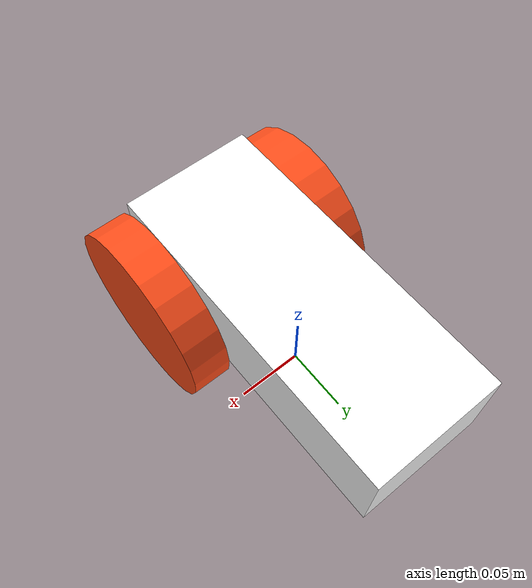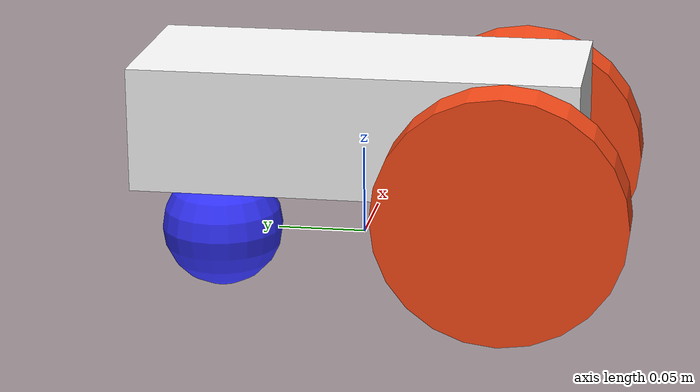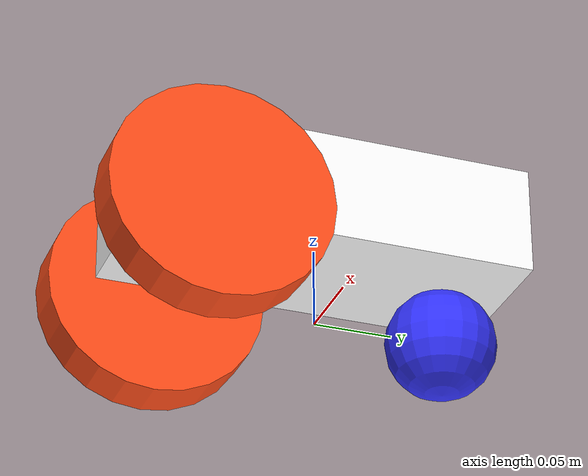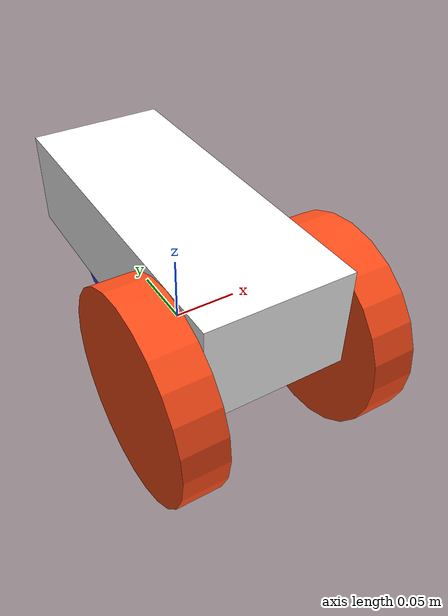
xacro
<?xml version="1.0"?>
<robot xmlns:xacro="http://www.ros.org/wiki/xacro"  name="car">

    <!-- This will be the file we use to simulate the 3-wheeled car in-class -->
    <xacro:include filename="general_include.xacro"/>

    <xacro:property name="chasis_x" value="0.10"/>
    <xacro:property name="chasis_y" value="0.25"/>
    <xacro:property name="chasis_z" value="0.07"/>

    <xacro:property name="wheel_diameter" value="0.07"/>
    <xacro:property name="wheel_width" value="0.03"/>
    <xacro:property name="front_wheel_diameter" value="0.035"/>

    <!-- Chasis of the robot -->
    <link name="chasis_link">
        <visual>
            <origin xyz="0 0 ${chasis_z/2 + wheel_diameter/2}" rpy="0 0 0"/>
            <geometry>
                <box size="${chasis_x} ${chasis_y} ${chasis_z}"/>
            </geometry>
            <material name="white"/>
        </visual>

        <collision>
            <origin xyz="0 0 ${chasis_z/2 + wheel_diameter/2}" rpy="0 0 0"/>
            <geometry>
                <box size="${chasis_x} ${chasis_y} ${chasis_z}"/>
            </geometry>
        </collision>

        <xacro:inertial_box mass="1000" x="${chasis_x}" y="${chasis_y}" z="${chasis_z}">
                <origin xyz="0 0 ${chasis_z/2 + wheel_diameter/2}" rpy="0 0 0"/>
        </xacro:inertial_box>

    </link>

    <!-- Joint for Back right wheel -->
    <joint name="wheel_br_joint" type="continuous">
        <parent link="chasis_link"/>
        <child link="wheel_br_link"/>
        <origin xyz="${chasis_x/2 + wheel_width/2} ${-(chasis_x - wheel_width/2)} ${chasis_z/2}" rpy="0 ${pi/2} 0"/>
        <axis xyz="0 0 -1"/>
    </joint>

    <!-- Back Right wheel link -->
    <link name="wheel_br_link">
        <visual>
            <origin xyz="0 0 0" rpy="0 0 0"/>
            <geometry>
                <cylinder length="${wheel_width}" radius="${wheel_diameter}"/>
            </geometry>
            <material name="orange"/>
        </visual>

        <collision>
            <origin xyz="0 0 0" rpy="0 0 0"/>
            <geometry>
                <cylinder length="${wheel_width}" radius="${wheel_diameter}"/>
            </geometry>
        </collision>

        <xacro:inertial_cylinder mass="80" length="${wheel_width}" radius="${wheel_diameter}">
            <origin xyz="0 0 0" rpy="0 0 0"/>
        </xacro:inertial_cylinder>
    </link>

    <!-- Joint for back left wheel -->
    <joint name="wheel_bl_joint" type="continuous">
        <parent link="chasis_link"/>
        <child link="wheel_bl_link"/>
        <origin xyz="${-(chasis_x/2 + wheel_width/2)} ${-(chasis_x - wheel_width/2)} ${chasis_z/2}" rpy="0 ${-pi/2} 0"/>
        <axis xyz="0 0 1"/>
    </joint>

    <!-- Front Back wheel link -->
    <link name="wheel_bl_link">
        <visual>
            <origin xyz="0 0 0" rpy="0 0 0"/>
            <geometry>
                <cylinder length="${wheel_width}" radius="${wheel_diameter}"/>
            </geometry>
            <material name="orange"/>
        </visual>

        <collision>
            <origin xyz="0 0 0" rpy="0 0 0"/>
            <geometry>
                <cylinder length="${wheel_width}" radius="${wheel_diameter}"/>
            </geometry>
        </collision>

        <xacro:inertial_cylinder mass="80" length="${wheel_width}" radius="${wheel_diameter}">
            <origin xyz="0 0 0" rpy="0 0 0"/>
        </xacro:inertial_cylinder>
    </link>

    <!-- Joint for Front Wheel-->
    <joint name="wheel_front_joint" type="fixed">
        <origin xyz="0 ${chasis_y/3} 0"/>
        <parent link="chasis_link"/>
        <child link="wheel_front_link"/>
    </joint>

    <!-- Link for front wheel -->
    <link name="wheel_front_link">
        <visual>
            <origin xyz="0 0 0" rpy="0 0 0"/>
            <geometry>
                <sphere radius="${front_wheel_diameter}"/>
            </geometry>
            <material name="blue"/>
        </visual>

        <collision>
            <origin xyz="0 0 0" rpy="0 0 0"/>
            <geometry>
                <sphere radius="${front_wheel_diameter}"/>
            </geometry>
        </collision>

        <xacro:inertial_sphere mass="30" radius="${front_wheel_diameter}">
            <origin xyz="0 0 0" rpy="0 0 0"/>
        </xacro:inertial_sphere>
    </link>

    <xacro:include filename ="example_gazebo.xacro"/>

</robot>

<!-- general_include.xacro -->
<robot xmlns:xacro="http://www.ros.org/wiki/xacro">

    <!-- Specify some colours -->

    <material name="white">
        <color rgba="1 1 1 1"/>
    </material>

    <material name="orange">
        <color rgba="1 0.3 0.1 1"/>
    </material>

    <material name="blue">
        <color rgba="0.2 0.2 1 1"/>
    </material>

    <!-- Specify some standard inertial calculations https://en.wikipedia.org/wiki/List_of_moments_of_inertia -->
    <!-- These make use of xacro's mathematical functionality -->

    <xacro:macro name="inertial_sphere" params="mass radius *origin">
        <inertial>
            <xacro:insert_block name="origin"/>
            <mass value="${mass}" />
            <inertia ixx="${(2/5) * mass * (radius*radius)}" ixy="0.0" ixz="0.0"
                    iyy="${(2/5) * mass * (radius*radius)}" iyz="0.0"
                    izz="${(2/5) * mass * (radius*radius)}" />
        </inertial>
    </xacro:macro>

    <xacro:macro name="inertial_box" params="mass x y z *origin">
        <inertial>
            <xacro:insert_block name="origin"/>
            <mass value="${mass}" />
            <inertia ixx="${(1/12) * mass * (y*y+z*z)}" ixy="0.0" ixz="0.0"
                    iyy="${(1/12) * mass * (x*x+z*z)}" iyz="0.0"
                    izz="${(1/12) * mass * (x*x+y*y)}" />
        </inertial>
    </xacro:macro>

    <xacro:macro name="inertial_cylinder" params="mass length radius *origin">
        <inertial>
            <xacro:insert_block name="origin"/>
            <mass value="${mass}" />
            <inertia ixx="${(1/12) * mass * (3*radius*radius + length*length)}" ixy="0.0" ixz="0.0"
                    iyy="${(1/12) * mass * (3*radius*radius + length*length)}" iyz="0.0"
                    izz="${(1/2) * mass * (radius*radius)}" />
        </inertial>
    </xacro:macro>

</robot>
